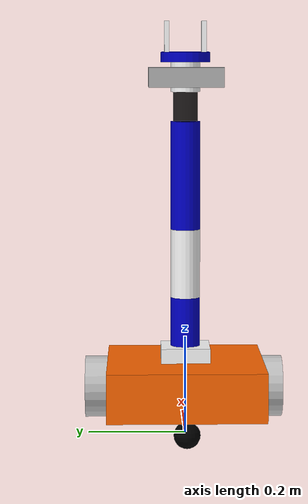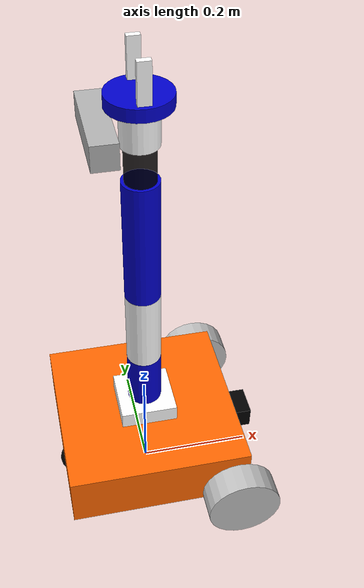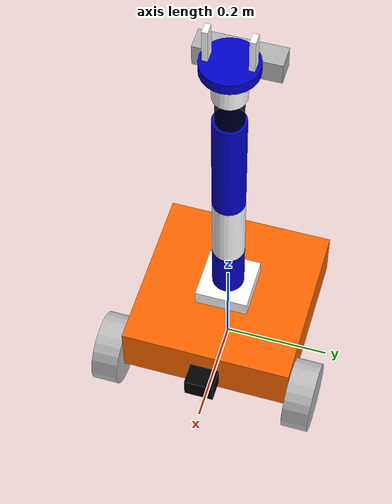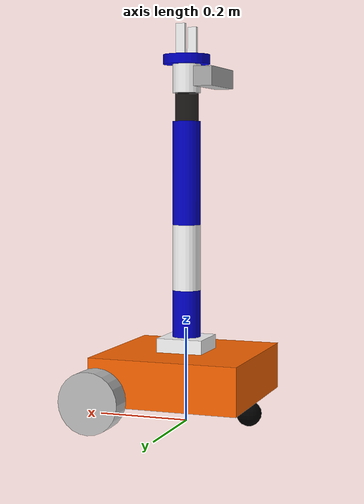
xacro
<?xml version="1.0"?>
<robot name="six_arm"
    xmlns:xacro="http://www.ros.org/wiki/xacro">

    <xacro:include filename="$(find mybot_description)/urdf/large_base_gazebo.xacro" />
    <xacro:include filename="$(find mybot_description)/urdf/rgbd_gazebo.xacro" />
    <xacro:include filename="$(find mybot_description)/urdf/camera_gazebo.xacro" />
    <xacro:include filename="$(find mybot_description)/urdf/lidar_gazebo.xacro" />
    <xacro:include filename="$(find mybot_description)/urdf/arm_gazebo.xacro" />

    <!-- rgbd -->
    <xacro:property name="rgbd_offset_x" value="0.06" />
    <xacro:property name="rgbd_offset_y" value="0" />
    <xacro:property name="rgbd_offset_z" value="-0.03" />

    <joint name="rgbd_joint" type="fixed">
        <origin xyz="${-rgbd_offset_x} ${rgbd_offset_y} ${rgbd_offset_z}" rpy="0 ${-M_PI/2} 0" />
        <parent link="grasping_frame" />
        <child link="camera_rgbd_link" />
    </joint>

    <xacro:rgbd_camera prefix="camera_rgbd" />

    <!-- Camera -->
    <xacro:property name="camera_offset_x" value="${base_length/2+0.02}" />
    <xacro:property name="camera_offset_y" value="0" />
    <xacro:property name="camera_offset_z" value="-0.01" />

    <joint name="camera_joint" type="fixed">
        <origin xyz="${camera_offset_x} ${camera_offset_y} ${camera_offset_z}" rpy="0 0 0" />
        <parent link="base_link" />
        <child link="camera_link" />
    </joint>

    <xacro:mipi_camera prefix="camera" />

    <!-- Lidar -->
    <xacro:property name="lidar_offset_x" value="0" />
    <xacro:property name="lidar_offset_y" value="0" />
    <xacro:property name="lidar_offset_z" value="${base_height/2+0.01}" />
    <xacro:property name="robot_radius" value="${(base_length**2 + base_width**2)**0.5 / 2}" />
    <xacro:property name="safety_margin" value="0.05" />

    <joint name="lidar_joint" type="fixed">
        <origin xyz="${lidar_offset_x} ${lidar_offset_y} ${lidar_offset_z}" rpy="0 0 0" />
        <parent link="base_link" />
        <child link="laser_link" />
    </joint>

    <xacro:lidar prefix="laser" gz_visualize="false" range_min="0.10" />

    <!-- arm -->
    <xacro:property name="arm_offset_x" value="0.0" />
    <xacro:property name="arm_offset_y" value="0" />
    <xacro:property name="arm_offset_z" value="${base_height/2+0.01}" />

    <joint name="connect_joint" type="fixed">
        <origin xyz="${arm_offset_x} ${arm_offset_y} ${arm_offset_z}" rpy=" 0 0 0" />
        <parent link="base_link" />
        <child link="arm_base_link" />
    </joint>

</robot>

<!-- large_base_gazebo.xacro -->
<robot name="six_arm" xmlns:xacro="http://www.ros.org/wiki/xacro">

    <xacro:include filename="$(find mybot_description)/urdf/large_base.xacro" />

    <!-- Transmission is important to link the joints and the controller -->
    <xacro:macro name="wheel_transmission" params="prefix">
        <transmission name="${prefix}_wheel_joint_trans">
            <type>transmission_interface/SimpleTransmission</type>
            <joint name="${prefix}_wheel_joint">
                <hardwareInterface>hardware_interface/VelocityJointInterface</hardwareInterface>
            </joint>
            <actuator name="${prefix}_wheel_joint_motor">
                <hardwareInterface>hardware_interface/VelocityJointInterface</hardwareInterface>
                <mechanicalReduction>1</mechanicalReduction>
            </actuator>
        </transmission>

        <gazebo reference="${prefix}_wheel_link">
            <material>Gazebo/Gray</material>
            <mu1>100000.0</mu1>
            <mu2>100000.0</mu2>
        </gazebo>
    </xacro:macro>

    <!-- /////////////////////////////////   Gazebo   ////////////////////////////////////// -->
    <gazebo reference="base_footprint">
        <turnGravityOff>false</turnGravityOff>
    </gazebo>
    <gazebo reference="base_link">
        <material>Gazebo/Blue</material>
        <contact>
            <ode>
              <!-- 软接触: 臂杆/底盘剐蹭墙体时不产生爆炸性冲量(位置控制的
                   关节在接触中反打会把底盘掀飞); 驱动轮保持默认刚性 -->
              <kp>10000</kp>
              <kd>10</kd>
              <max_vel>0.05</max_vel>
              <min_depth>0.01</min_depth>
            </ode>
          </contact>
    </gazebo>

    <gazebo reference="back_caster_link">
        <material>Gazebo/Black</material>
        <contact>
            <ode>
              <!-- 软接触: 臂杆/底盘剐蹭墙体时不产生爆炸性冲量(位置控制的
                   关节在接触中反打会把底盘掀飞); 驱动轮保持默认刚性 -->
              <kp>10000</kp>
              <kd>10</kd>
              <max_vel>0.05</max_vel>
              <min_depth>0.01</min_depth>
            </ode>
          </contact>
    </gazebo>

    <xacro:wheel_transmission prefix="left" />
    <xacro:wheel_transmission prefix="right" />

    <!-- controller -->
    <gazebo>
        <plugin name="differential_drive_controller" filename="libgazebo_ros_diff_drive.so">
            <!-- Keep odom TF fresher than the 20 Hz lidar under GUI load. -->
            <update_rate>100</update_rate>
            <left_joint>left_wheel_joint</left_joint>
            <right_joint>right_wheel_joint</right_joint>
	    <wheel_separation>${base_width + wheel_length}</wheel_separation>
            <wheel_diameter>${2*wheel_radius}</wheel_diameter>
            <max_wheel_torque>10</max_wheel_torque>
            <max_wheel_acceleration>1.0</max_wheel_acceleration>
            <publish_odom>true</publish_odom>
            <publish_odom_tf>true</publish_odom_tf>
            <publish_wheel_tf>true</publish_wheel_tf>
            <odometry_topic>odom</odometry_topic>
            <odometry_frame>odom</odometry_frame>
            <robot_base_frame>base_footprint</robot_base_frame>
            <odometry_source>1</odometry_source>
        </plugin>
    </gazebo>
</robot>

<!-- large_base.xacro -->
<robot name="originbot"
    xmlns:xacro="http://www.ros.org/wiki/xacro">
    <!-- 大号机器人模型 -->
    <!-- PROPERTY LIST -->
    <xacro:property name="M_PI" value="3.1415926" />
    <xacro:property name="base_mass" value="20" />

    <xacro:property name="base_width" value="0.320" />
    <xacro:property name="base_length" value="0.320" />
    <xacro:property name="base_height" value="0.1" />

    <!-- 轮子 -->
    <xacro:property name="wheel_mass" value="0.4" />
    <xacro:property name="wheel_radius" value="0.065" />
    <xacro:property name="wheel_length" value="0.050" />

    <xacro:property name="wheel_joint_x" value="0.14" />
    <xacro:property name="wheel_joint_y" value="0.38" />
    <xacro:property name="wheel_joint_z" value="0.035" />

    <!-- 支撑轮 -->
    <xacro:property name="caster_mass" value="0.4" />
    <xacro:property name="caster_radius" value="0.0267" />
    <xacro:property name="caster_joint_x" value="0.14" />

    <material name="yellow">
        <color rgba="1 0.4 0 1" />
    </material>
    <material name="black">
        <color rgba="0 0 0 0.95" />
    </material>
    <material name="gray">
        <color rgba="0.75 0.75 0.75 1" />
    </material>

    <!-- Macro for inertia matrix -->

    <!-- 球面惯性矩阵 -->
    <xacro:macro name="sphere_inertial_matrix" params="m r">
        <inertial>
            <mass value="${m}" />
            <inertia ixx="${2*m*r*r/5}" ixy="0" ixz="0" iyy="${2*m*r*r/5}" iyz="0"
                izz="${2*m*r*r/5}" />
        </inertial>
    </xacro:macro>

    <!-- 圆柱惯性矩阵 -->
    <xacro:macro name="cylinder_inertial_matrix" params="m r h">
        <inertial>
            <mass value="${m}" />
            <inertia ixx="${m*(3*r*r+h*h)/12}" ixy="0" ixz="0" iyy="${m*(3*r*r+h*h)/12}" iyz="0"
                izz="${m*r*r/2}" />
        </inertial>
    </xacro:macro>

    <!-- 方块惯性矩阵 -->
    <xacro:macro name="box_inertial_matrix" params="m l w h">
        <inertial>
            <mass value="${m}" />
            <inertia ixx="${m*(h*h + l*l)/12}" ixy="0" ixz="0" iyy="${m*(w*w + l*l)/12}" iyz="0"
                izz="${m*(w*w + h*h)/12}" />
        </inertial>
    </xacro:macro>

    <!-- Macro for robot 轮子 -->
    <xacro:macro name="wheel" params="prefix reflect">
        <joint name="${prefix}_wheel_joint" type="continuous">
            <origin xyz="${wheel_joint_x} ${reflect*(base_width+wheel_length)/2} ${-wheel_joint_z}"
                rpy="0 0 0" />
            <parent link="base_link" />
            <child link="${prefix}_wheel_link" />
            <axis xyz="0 1 0" />
        </joint>

        <link name="${prefix}_wheel_link">
            <visual>
                <origin xyz="0 0 0" rpy="${M_PI/2} 0 0" />
                <geometry>
                    <cylinder radius="${wheel_radius}" length="${wheel_length}" />
                </geometry>
                <material name="gray" />
            </visual>
            <collision>
                <origin xyz="0 0 0" rpy="${M_PI/2} 0 0" />
                <geometry>
                    <cylinder radius="${wheel_radius}" length="${wheel_length}" />
                </geometry>
            </collision>
            <xacro:cylinder_inertial_matrix m="${wheel_mass}" r="${wheel_radius}"
                h="${wheel_length}" />
        </link>

    </xacro:macro>

    <!-- Macro for robot 支撑轮 -->
    <xacro:macro name="caster" params="prefix reflect">
        <joint name="${prefix}_caster_joint" type="fixed">
            <origin xyz="${reflect*caster_joint_x} 0 ${-(base_height/2 + caster_radius)}"
                rpy="0 0 0" />
            <parent link="base_link" />
            <child link="${prefix}_caster_link" />
        </joint>

        <link name="${prefix}_caster_link">
            <visual>
                <origin xyz="0 0 0" rpy="0 0 0" />
                <geometry>
                    <sphere radius="${caster_radius}" />
                </geometry>
                <material name="black" />
            </visual>
            <collision>
                <origin xyz="0 0 0" rpy="0 0 0" />
                <geometry>
                    <sphere radius="${caster_radius}" />
                </geometry>
            </collision>
            <xacro:sphere_inertial_matrix m="${caster_mass}" r="${caster_radius}" />
        </link>

    </xacro:macro>

    <link name="base_footprint">
        <visual>
            <origin xyz="0 0 0" rpy="0 0 0" />
            <geometry>
                <box size="0.001 0.001 0.001" />
            </geometry>
        </visual>
    </link>

    <joint name="base_footprint_joint" type="fixed">
        <origin xyz="0 0 ${base_height/2 + caster_radius*2}" rpy="0 0 0" />
        <parent link="base_footprint" />
        <child link="base_link" />
    </joint>

    <link name="base_link">
        <visual>
            <origin xyz=" 0 0 0" rpy="0 0 0" />
            <geometry>
                <box size="${base_length} ${base_width} ${base_height}" />
            </geometry>
            <material name="yellow" />
        </visual>
        <collision>
            <origin xyz=" 0 0 0" rpy="0 0 0" />
            <geometry>
                <box size="${base_length} ${base_width} ${base_height}" />
            </geometry>
        </collision>
        <xacro:box_inertial_matrix m="${base_mass}" l="${base_length}" w="${base_width}"
            h="${base_height}" />
    </link>

    <xacro:wheel prefix="left" reflect="1" />
    <xacro:wheel prefix="right" reflect="-1" />

    <xacro:caster prefix="back" reflect="-1" />

</robot>

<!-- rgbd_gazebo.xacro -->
<robot xmlns:xacro="http://www.ros.org/wiki/xacro" name="rgbd_camera">

    <xacro:macro name="rgbd_camera" params="prefix:=camera">
        <!-- Create rgbd reference frame -->
        <!-- Add mesh for rgbd -->
        <link name="${prefix}_link">
            <origin xyz="0 0 0" rpy="0 0 0" />
            <visual>
                <origin xyz="0 0 0" rpy="0 0 ${M_PI/2}" />
                <geometry>
                    <box size="0.15 0.04 0.04" />
                </geometry>
            </visual>
            <collision>
                <geometry>
                    <box size="0.07 0.3 0.09" />
                </geometry>
            </collision>
        </link>

        <joint name="${prefix}_optical_joint" type="fixed">
            <origin xyz="0 0 0" rpy="-1.5708 0 -1.5708" />
            <parent link="${prefix}_link" />
            <child link="${prefix}_frame_optical" />
        </joint>

        <link name="${prefix}_frame_optical" />

        <gazebo reference="${prefix}_link">
            <sensor type="depth" name="${prefix}">
                <always_on>true</always_on>
                <update_rate>5.0</update_rate>
                <pose>0 0 0 0 0 0</pose>
                <camera name="camera">
                    <horizontal_fov>${60.0*M_PI/180.0}</horizontal_fov>
                    <image>
                        <format>R8G8B8</format>
                        <width>640</width>
                        <height>480</height>
                    </image>
                    <clip>
                        <near>0.05</near>
                        <far>8.0</far>
                    </clip>
                </camera>
                <plugin name="${prefix}_controller" filename="libgazebo_ros_camera.so">
                    <ros>
                        <namespace>${prefix}</namespace>
                    </ros>
                    <camera_name>${prefix}</camera_name>
                    <frame_name>${prefix}_frame_optical</frame_name>

                    <hack_baseline>0.07</hack_baseline>
                    <min_depth>0.001</min_depth>
                    <max_depth>300.0</max_depth>
                </plugin>
            </sensor>
        </gazebo>

    </xacro:macro>
</robot>

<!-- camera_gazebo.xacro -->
<robot xmlns:xacro="http://www.ros.org/wiki/xacro" name="camera">

    <xacro:macro name="mipi_camera" params="prefix:=camera">
        <!-- Create camera reference frame -->
        <link name="${prefix}_link">
            <inertial>
                <mass value="0.1" />
                <origin xyz="0 0 0" />
                <inertia ixx="0.01" ixy="0.0" ixz="0.0"
                         iyy="0.01" iyz="0.0"
                         izz="0.01" />
            </inertial>

            <visual>
                <origin xyz=" 0 0 0 " rpy="0 0 0" />
                <geometry>
                    <box size="0.04 0.055 0.04" />
                </geometry>
                <material name="black"/>
            </visual>

            <collision>
                <origin xyz="0.0 0.0 0.0" rpy="0 0 0" />
                <geometry>
                    <box size="0.04 0.055 0.04" />
                </geometry>
            </collision>
        </link>
        <gazebo reference="${prefix}_link">
            <material>Gazebo/Black</material>
        </gazebo>

        <gazebo reference="${prefix}_link">
            <sensor type="camera" name="camera_node">
                <!-- 640x480@10 Hz is smoother while using less pixel bandwidth
                     than the previous 1280x720@5 Hz stream. -->
                <update_rate>10.0</update_rate>
                <camera name="head">
                    <horizontal_fov>1.3962634</horizontal_fov>
                    <image>
                        <width>640</width>
                        <height>480</height>
                        <format>R8G8B8</format>
                    </image>
                    <clip>
                        <near>0.02</near>
                        <far>300</far>
                    </clip>
                    <noise>
                        <type>gaussian</type>
                        <mean>0.0</mean>
                        <stddev>0.007</stddev>
                    </noise>
                </camera>
                <plugin name="gazebo_camera" filename="libgazebo_ros_camera.so">
				    <ros>
				        <remapping>~/image_raw:=image_raw</remapping>
				        <remapping>~/camera_info:=camera_info</remapping>
				    </ros>
				    <camera_name>${prefix}</camera_name>
				    <frame_name>${prefix}_link</frame_name>
				    <hack_baseline>0.2</hack_baseline>
                </plugin>
            </sensor>
        </gazebo>

    </xacro:macro>
</robot>

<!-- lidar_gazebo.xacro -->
<robot xmlns:xacro="http://www.ros.org/wiki/xacro" name="laser">

    <xacro:macro name="lidar"
        params="prefix:=laser gz_visualize:=false range_min:=0.10 range_max:=30.0">
        <!-- Create laser reference frame -->
        <link name="${prefix}_link">
            <inertial>
                <mass value="0.1" />
                <origin xyz="0 0 0" />
                <inertia ixx="0.01" ixy="0.0" ixz="0.0" iyy="0.01" iyz="0.0" izz="0.01" />
            </inertial>

            <visual>
                <origin xyz=" 0 0 0 " rpy="0 0 0" />
                <geometry>
                    <cylinder length="0.02" radius="0.031" />
                </geometry>
                <material name="black" />
            </visual>

            <collision>
                <origin xyz="0.0 0.0 0.0" rpy="0 0 0" />
                <geometry>
                    <cylinder length="0.01" radius="0.015" />
                </geometry>
            </collision>
        </link>
        <gazebo reference="${prefix}_link">
            <material>Gazebo/Black</material>
            <!-- 禁用自碰撞检测 -->
            <selfCollide>false</selfCollide>
            <disableCollisions>true</disableCollisions>
        </gazebo>

        <gazebo reference="${prefix}_link">
            <sensor type="ray" name="lidar">
                <update_rate>10</update_rate>
                <visualize>${gz_visualize}</visualize>
                <ray>
                    <scan>
                        <horizontal>
                            <samples>360</samples>
                            <resolution>0.5</resolution>
                            <min_angle>-3.14159</min_angle>
                            <max_angle>3.14159</max_angle>
                        </horizontal>
                    </scan>
                    <range>
                        <min>${range_min}</min>
                        <max>${range_max}</max>
                        <resolution>0.01</resolution>
                    </range>
                    <noise>
                        <type>gaussian</type>
                        <mean>0.0</mean>
                        <stddev>0.005</stddev>
                    </noise>
                </ray>
                <plugin name="gazebo_lidar" filename="libgazebo_ros_ray_sensor.so">
                    <ros>
                        <namespace>/</namespace>
                        <remapping>~/out:=scan</remapping>
                    </ros>
                    <output_type>sensor_msgs/LaserScan</output_type>
                    <frame_name>${prefix}_link</frame_name>
                </plugin>
            </sensor>
        </gazebo>

    </xacro:macro>
</robot>

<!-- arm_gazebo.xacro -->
<robot name="six_arm" xmlns:xacro="http://www.ros.org/wiki/xacro">

    <xacro:include filename="$(find mybot_description)/urdf/arm.xacro" />

    <!-- /////////////////////////////////   Gazebo   ////////////////////////////////////// -->
    <gazebo reference="arm_base_link">
        <material>Gazebo/White</material>
        <contact>
            <ode>
              <!-- 软接触: 臂杆/底盘剐蹭墙体时不产生爆炸性冲量(位置控制的
                   关节在接触中反打会把底盘掀飞); 驱动轮保持默认刚性 -->
              <kp>10000</kp>
              <kd>10</kd>
              <max_vel>0.05</max_vel>
              <min_depth>0.01</min_depth>
            </ode>
          </contact>
    </gazebo>
    <gazebo reference="link1">
        <material>Gazebo/Blue</material>
        <contact>
            <ode>
              <!-- 软接触: 臂杆/底盘剐蹭墙体时不产生爆炸性冲量(位置控制的
                   关节在接触中反打会把底盘掀飞); 驱动轮保持默认刚性 -->
              <kp>10000</kp>
              <kd>10</kd>
              <max_vel>0.05</max_vel>
              <min_depth>0.01</min_depth>
            </ode>
          </contact>
    </gazebo>
    <gazebo reference="link2">
        <material>Gazebo/White</material>
        <contact>
            <ode>
              <!-- 软接触: 臂杆/底盘剐蹭墙体时不产生爆炸性冲量(位置控制的
                   关节在接触中反打会把底盘掀飞); 驱动轮保持默认刚性 -->
              <kp>10000</kp>
              <kd>10</kd>
              <max_vel>0.05</max_vel>
              <min_depth>0.01</min_depth>
            </ode>
          </contact>
    </gazebo>
    <gazebo reference="link3">
        <material>Gazebo/Blue</material>
        <contact>
            <ode>
              <!-- 软接触: 臂杆/底盘剐蹭墙体时不产生爆炸性冲量(位置控制的
                   关节在接触中反打会把底盘掀飞); 驱动轮保持默认刚性 -->
              <kp>10000</kp>
              <kd>10</kd>
              <max_vel>0.05</max_vel>
              <min_depth>0.01</min_depth>
            </ode>
          </contact>
    </gazebo>
    <gazebo reference="link4">
        <material>Gazebo/Black</material>
        <contact>
            <ode>
              <!-- 软接触: 臂杆/底盘剐蹭墙体时不产生爆炸性冲量(位置控制的
                   关节在接触中反打会把底盘掀飞); 驱动轮保持默认刚性 -->
              <kp>10000</kp>
              <kd>10</kd>
              <max_vel>0.05</max_vel>
              <min_depth>0.01</min_depth>
            </ode>
          </contact>
    </gazebo>
    <gazebo reference="link5">
        <material>Gazebo/White</material>
        <contact>
            <ode>
              <!-- 软接触: 臂杆/底盘剐蹭墙体时不产生爆炸性冲量(位置控制的
                   关节在接触中反打会把底盘掀飞); 驱动轮保持默认刚性 -->
              <kp>10000</kp>
              <kd>10</kd>
              <max_vel>0.05</max_vel>
              <min_depth>0.01</min_depth>
            </ode>
          </contact>
    </gazebo>
    <gazebo reference="link6">
        <material>Gazebo/Blue</material>
        <contact>
            <ode>
              <!-- 软接触: 臂杆/底盘剐蹭墙体时不产生爆炸性冲量(位置控制的
                   关节在接触中反打会把底盘掀飞); 驱动轮保持默认刚性 -->
              <kp>10000</kp>
              <kd>10</kd>
              <max_vel>0.05</max_vel>
              <min_depth>0.01</min_depth>
            </ode>
          </contact>
    </gazebo>
    <gazebo reference="gripper_finger_link1">
        <material>Gazebo/White</material>
        <contact>
            <ode>
              <!-- 软接触: 臂杆/底盘剐蹭墙体时不产生爆炸性冲量(位置控制的
                   关节在接触中反打会把底盘掀飞); 驱动轮保持默认刚性 -->
              <kp>10000</kp>
              <kd>10</kd>
              <max_vel>0.05</max_vel>
              <min_depth>0.01</min_depth>
            </ode>
          </contact>
    </gazebo>
    <gazebo reference="gripper_finger_link2">
        <material>Gazebo/White</material>
        <contact>
            <ode>
              <!-- 软接触: 臂杆/底盘剐蹭墙体时不产生爆炸性冲量(位置控制的
                   关节在接触中反打会把底盘掀飞); 驱动轮保持默认刚性 -->
              <kp>10000</kp>
              <kd>10</kd>
              <max_vel>0.05</max_vel>
              <min_depth>0.01</min_depth>
            </ode>
          </contact>
    </gazebo>

    <xacro:macro name="ros2_control_joint" params="joint_name">
        <joint name="${joint_name}">
            <command_interface name="position">
                <param name="min">-1</param>
                <param name="max">1</param>
            </command_interface>
            <state_interface name="position">
                <param name="initial_value">0.0</param>
            </state_interface>
            <state_interface name="velocity" />
        </joint>
    </xacro:macro>

    <ros2_control name="GazeboSystem" type="system">
        <hardware>
            <plugin>gazebo_ros2_control/GazeboSystem</plugin>
        </hardware>
        <xacro:ros2_control_joint joint_name="joint1" />
        <xacro:ros2_control_joint joint_name="joint2" />
        <xacro:ros2_control_joint joint_name="joint3" />
        <xacro:ros2_control_joint joint_name="joint4" />
        <xacro:ros2_control_joint joint_name="joint5" />
        <xacro:ros2_control_joint joint_name="joint6" />
        <xacro:ros2_control_joint joint_name="finger_joint1" />
        <xacro:ros2_control_joint joint_name="finger_joint2" />
    </ros2_control>

    <!-- gazebo_ros2_contril -->
    <gazebo>
        <plugin name="gazebo_ros2_control" filename="libgazebo_ros2_control.so">
            <parameters>$(find mybot)/config/ros2_controllers.yaml</parameters>
            <robot_param_node>robot_state_publisher</robot_param_node>
        </plugin>
    </gazebo>

</robot>

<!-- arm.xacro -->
<robot name="six_arm"
    xmlns:xacro="http://www.ros.org/wiki/xacro">
    <!-- 定义一些颜色 -->
    <material name="Blue">
        <color rgba="0 0 0.8 1" />
    </material>

    <material name="Black">
        <color rgba="0 0 0 0.85" />
    </material>

    <material name="White">
        <color rgba="1 1 1 1" />
    </material>

    <!-- 常量 -->
    <xacro:property name="M_PI" value="3.1415926" />

    <!-- 连杆半径和长度 -->
    <!-- link1 -->
    <xacro:property name="link1_rad" value="0.03" />
    <xacro:property name="link1_len" value="0.1" />
    <!-- link2 -->
    <xacro:property name="link2_rad" value="0.03" />
    <xacro:property name="link2_len" value="0.14" />
    <!-- link3 -->
    <xacro:property name="link3_rad" value="0.03" />
    <xacro:property name="link3_len" value="0.22" />
    <!-- link4 -->
    <xacro:property name="link4_rad" value="0.025" />
    <xacro:property name="link4_len" value="0.06" />
    <!-- link5 -->
    <xacro:property name="link5_rad" value="0.03" />
    <xacro:property name="link5_len" value="0.06" />
    <!-- link6 -->
    <xacro:property name="link6_rad" value="0.05" />
    <xacro:property name="link6_len" value="0.02" />
    <!-- 夹爪 长宽高-->
    <!-- gripper -->
    <xacro:property name="gripper_l" value="0.08" />
    <xacro:property name="gripper_w" value="0.01" />
    <xacro:property name="gripper_h" value="0.02" />
    <!-- 夹爪安装距离参数0~1 -->
    <xacro:property name="gripper_offset" value="0.75" />
    <xacro:property name="gripper_offset_h" value="0.002" />
    <!-- 底座长宽高 -->
    <!-- base -->
    <xacro:property name="base_l" value="0.1" />
    <xacro:property name="base_w" value="0.1" />
    <xacro:property name="base_h" value="0.04" />

    <!-- 惯性矩阵 -->
    <xacro:macro name="inertial_matrix" params="m">
        <inertial>
            <mass value="${m}" />
            <inertia ixx="0.0001" ixy="0" ixz="0" iyy="0.0001" iyz="0" izz="0.0001" />
        </inertial>
    </xacro:macro>

    <!-- Macro for inertia matrix -->
    <xacro:macro name="sphere_inertial_matrix" params="m r">
        <inertial>
            <mass value="${m}" />
            <inertia ixx="${2*m*r*r/5}" ixy="0" ixz="0"
                iyy="${2*m*r*r/5}" iyz="0"
                izz="${2*m*r*r/5}" />
        </inertial>
    </xacro:macro>

    <xacro:macro name="cylinder_inertial_matrix" params="m r h">
        <inertial>
            <mass value="${m}" />
            <inertia ixx="${m*(3*r*r+h*h)/12}" ixy="0" ixz="0"
                iyy="${m*(3*r*r+h*h)/12}" iyz="0"
                izz="${m*r*r/2}" />
        </inertial>
    </xacro:macro>

    <xacro:macro name="box_inertial_matrix" params="m l w h">
        <inertial>
            <mass value="${m}" />
            <inertia ixx="${m*(h*h + l*l)/12}" ixy="0" ixz="0"
                iyy="${m*(w*w + l*l)/12}" iyz="0"
                izz="${m*(w*w + h*h)/12}" />
        </inertial>
    </xacro:macro>

    <!-- 底座 -->
    <link name="arm_base_link">
        <visual>
            <origin xyz="0 0 0" rpy="0 0 0" />
            <geometry>
                <box size="${base_l} ${base_w} ${base_h}" />
            </geometry>
            <material name="White" />
        </visual>
        <collision>
            <geometry>
                <box size="${base_l} ${base_w} ${base_h}" />
            </geometry>
        </collision>
        <xacro:inertial_matrix m="1" />
    </link>

    <!-- joint1 -->
    <joint name="joint1" type="revolute">
        <parent link="arm_base_link" />
        <child link="link1" />
        <origin xyz="0 0 ${base_h / 2 + link1_len / 2}" rpy="0 0 0" />
        <axis xyz="0 0 1" />
        <limit lower="-3.14" upper="3.14" effort="300" velocity="1.0" />
        <joint_properties damping="50" friction="1" />
    </joint>

    <!-- link1 -->
    <link name="link1">
        <visual>
            <geometry>
                <cylinder radius="${link1_rad}" length="${link1_len}" />
            </geometry>
            <material name="Blue" />
        </visual>
        <collision>
            <geometry>
                <cylinder radius="${link1_rad}" length="${link1_len}" />
            </geometry>
        </collision>
        <xacro:inertial_matrix m="0.1" />
    </link>

    <!-- link2 -->
    <link name="link2">
        <visual>
            <origin xyz="0 0 ${link2_len/2}" rpy="0 0 0" />
            <geometry>
                <cylinder radius="${link2_rad}" length="${link2_len}" />
            </geometry>
            <material name="White" />
        </visual>
        <collision>
            <origin xyz="0 0 ${link2_len/2}" rpy="0 0 0" />
            <geometry>
                <cylinder radius="${link2_rad}" length="${link2_len}" />
            </geometry>
        </collision>
        <xacro:inertial_matrix m="0.1" />
    </link>

    <!-- joint2 -->
    <joint name="joint2" type="revolute">
        <parent link="link1" />
        <child link="link2" />
        <origin xyz="0 0 ${link1_len/2}" rpy="0 0 0" />
        <axis xyz="0 1 0" />
        <limit effort="300" velocity="1.0" lower="-2.35" upper="2.35" />
        <joint_properties damping="50" friction="1" />
    </joint>

    <!-- link3 -->
    <link name="link3">
        <visual>
            <origin xyz="0 0 ${link3_len/2}" rpy="0 0 0" />
            <geometry>
                <cylinder radius="${link3_rad}" length="${link3_len}" />
            </geometry>
            <material name="Blue" />
        </visual>
        <collision>
            <origin xyz="0 0 ${link3_len/2}" rpy="0 0 0" />
            <geometry>
                <cylinder radius="${link3_rad}" length="${link3_len}" />
            </geometry>
        </collision>
        <xacro:inertial_matrix m="0.1" />
    </link>

    <!-- joint3 -->
    <joint name="joint3" type="revolute">
        <parent link="link2" />
        <child link="link3" />
        <origin xyz="0 0 ${link2_len}" rpy="0 0 0" />
        <axis xyz="0 1 0" />
        <limit effort="300" velocity="1.0" lower="-2.62" upper="2.62" />

        <joint_properties damping="50" friction="1" />
    </joint>

    <!-- link4 -->
    <link name="link4">
        <visual>
            <origin xyz="0 0 ${link4_len/2}" rpy="0 0 0" />
            <geometry>
                <cylinder radius="${link4_rad}" length="${link4_len}" />
            </geometry>
            <material name="Black" />
        </visual>
        <collision>
            <origin xyz="0 0 ${link4_len/2}" rpy="0 0 0" />
            <geometry>
                <cylinder radius="${link4_rad}" length="${link4_len}" />
            </geometry>
        </collision>
        <xacro:inertial_matrix m="0.1" />
    </link>
    <!-- joint4 -->
    <joint name="joint4" type="revolute">
        <parent link="link3" />
        <child link="link4" />
        <origin xyz="0 0 ${link3_len}" rpy="0 0 0" />
        <axis xyz="0 0 1" />
        <limit lower="-3.14" upper="3.14" effort="300" velocity="1.0" />
        <joint_properties damping="50" friction="1" />
    </joint>

    <!-- link5 -->
    <link name="link5">
        <visual>
            <origin xyz="0 0 ${link5_len/2}" rpy="0 0 0" />
            <geometry>
                <cylinder radius="${link5_rad}" length="${link5_len}" />
            </geometry>
            <material name="White" />
        </visual>
        <collision>
            <origin xyz="0 0 ${link5_len/2}" rpy="0 0 0" />
            <geometry>
                <cylinder radius="${link5_rad}" length="${link5_len}" />
            </geometry>
        </collision>
        <xacro:inertial_matrix m="0.1" />
    </link>

    <!-- joint5 -->
    <joint name="joint5" type="revolute">
        <parent link="link4" />
        <child link="link5" />
        <origin xyz="0 0 ${link4_len}" rpy="0 0 0" />
        <axis xyz="0 -1 0" />
        <limit effort="300" velocity="1.0" lower="-2.35" upper="2.35" />

        <joint_properties damping="50" friction="1" />
    </joint>

    <!-- link6 -->
    <link name="link6">
        <visual>
            <origin xyz="0 0 ${link6_len/2}" rpy="0 0 0" />
            <geometry>
                <cylinder radius="${link6_rad}" length="${link6_len}" />
            </geometry>
            <material name="Blue" />
        </visual>
        <collision>
            <origin xyz="0 0 ${link6_len/2}" rpy="0 0 0" />
            <geometry>
                <cylinder radius="${link6_rad}" length="${link6_len}" />
            </geometry>
        </collision>
        <xacro:inertial_matrix m="0.1" />
    </link>

    <!-- joint6 -->
    <joint name="joint6" type="revolute">
        <parent link="link5" />
        <child link="link6" />
        <origin xyz="0 0 ${link5_len}" rpy="0 0 0" />
        <axis xyz="0 0 1" />
        <limit lower="-3.14" upper="3.14" effort="300" velocity="1.0" />
        <joint_properties damping="50" friction="1" />
    </joint>

    <!-- 夹爪 -->
    <xacro:macro name="gripper_finger_link" params="num">
        <link name="gripper_finger_link${num}">
            <visual>
                <geometry>
                    <box size="${gripper_l} ${gripper_w} ${gripper_h}" />
                </geometry>
                <material name="White" />
            </visual>
            <collision>
                <geometry>
                    <box size="${gripper_l} ${gripper_w} ${gripper_h}" />
                </geometry>
            </collision>
            <xacro:inertial_matrix m="0.01" />
        </link>
    </xacro:macro>

    <xacro:gripper_finger_link num="1" />
    <xacro:gripper_finger_link num="2" />

    <joint name="finger_joint1" type="prismatic">
        <parent link="link6" />
        <child link="gripper_finger_link1" />
        <origin xyz="0 -${link6_rad *gripper_offset} ${gripper_h*2+gripper_offset_h}"
            rpy="0 ${M_PI/2} 0" />
        <axis xyz="0 1 0" />
        <limit effort="100" lower="0" upper="${link6_rad+gripper_w}" velocity="1.0" />
        <dynamics damping="50" friction="1" />
    </joint>

    <joint name="finger_joint2" type="prismatic">
        <parent link="link6" />
        <child link="gripper_finger_link2" />
        <origin xyz="0 ${link6_rad *gripper_offset} ${gripper_h*2+gripper_offset_h}"
            rpy="0 ${M_PI/2} 0" />
        <axis xyz="0 -1 0" />
        <limit effort="100" lower="0" upper="${link6_rad+gripper_w}" velocity="1.0" />
        <dynamics damping="50" friction="1" />
    </joint>

    <!-- Grasping frame -->
    <link name="grasping_frame" />

    <joint name="grasping_frame_joint" type="fixed">
        <parent link="link6" />
        <child link="grasping_frame" />
        <origin xyz="0 0 0" rpy="0 0 0" />
    </joint>
</robot>
